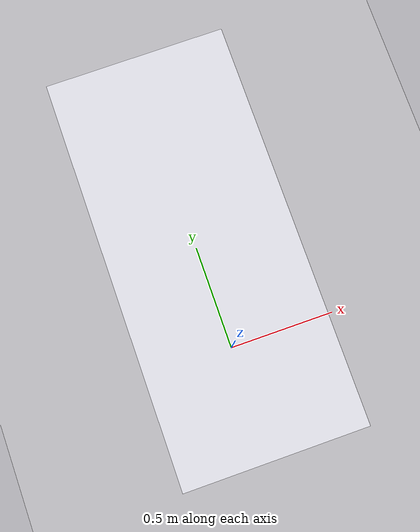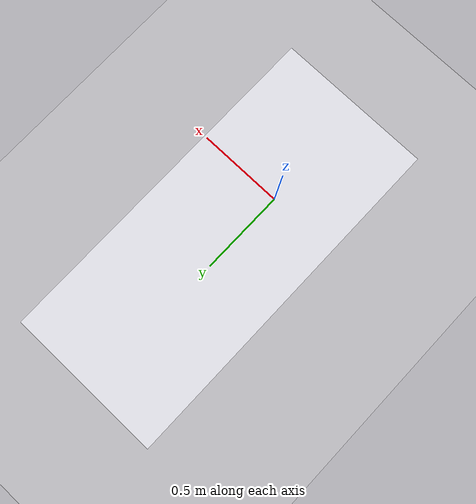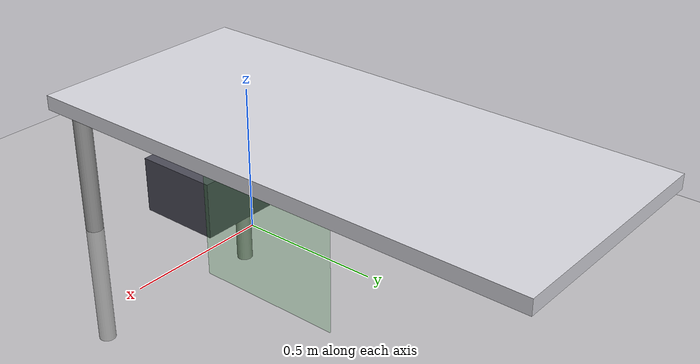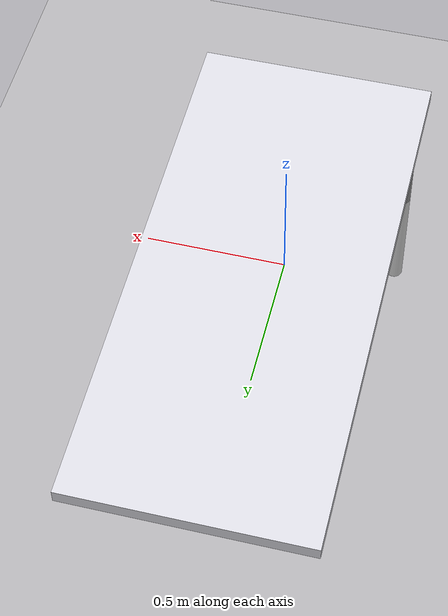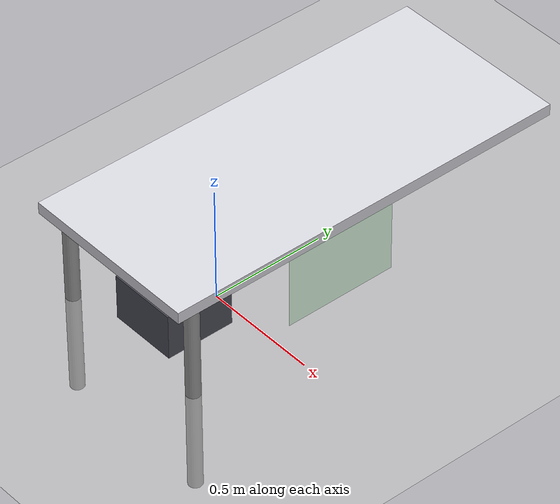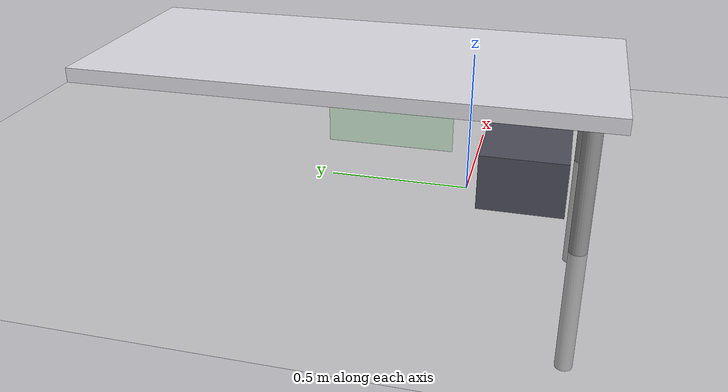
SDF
<?xml version="1.0" ?>
<sdf version="1.6">
  <world name="surgical_or">

    <!-- Lighting -->
    <light name="surgical_light" type="point">
      <pose>0 0 2.5 0 0 0</pose>
      <diffuse>0.9 0.9 0.95 1</diffuse>
      <specular>0.3 0.3 0.3 1</specular>
      <attenuation>
        <range>10</range>
        <linear>0.1</linear>
        <quadratic>0.01</quadratic>
      </attenuation>
      <cast_shadows>true</cast_shadows>
    </light>

    <light name="ambient_light" type="directional">
      <pose>0 0 5 0 0 0</pose>
      <diffuse>0.6 0.6 0.6 1</diffuse>
      <specular>0.1 0.1 0.1 1</specular>
      <direction>0 0 -1</direction>
    </light>

    <!-- Ground plane -->
    <model name="floor">
      <static>true</static>
      <link name="link">
        <collision name="collision">
          <geometry><plane><normal>0 0 1</normal><size>10 10</size></plane></geometry>
        </collision>
        <visual name="visual">
          <geometry><plane><normal>0 0 1</normal><size>10 10</size></plane></geometry>
          <material><ambient>0.85 0.85 0.85 1</ambient></material>
        </visual>
      </link>
    </model>

    <!-- Surgical table -->
    <model name="surgical_table">
      <static>true</static>
      <pose>0 0.4 0.45 0 0 0</pose>
      <link name="table_top">
        <collision name="collision">
          <geometry><box><size>0.8 1.8 0.05</size></box></geometry>
        </collision>
        <visual name="visual">
          <geometry><box><size>0.8 1.8 0.05</size></box></geometry>
          <material>
            <ambient>0.9 0.9 0.92 1</ambient>
            <diffuse>0.85 0.85 0.88 1</diffuse>
          </material>
        </visual>
      </link>
      <link name="table_leg_fl">
        <pose>-0.35 -0.8 -0.45 0 0 0</pose>
        <collision name="collision">
          <geometry><cylinder><radius>0.03</radius><length>0.9</length></cylinder></geometry>
        </collision>
        <visual name="visual">
          <geometry><cylinder><radius>0.03</radius><length>0.9</length></cylinder></geometry>
          <material><ambient>0.6 0.6 0.6 1</ambient></material>
        </visual>
      </link>
      <link name="table_leg_fr">
        <pose>0.35 -0.8 -0.45 0 0 0</pose>
        <collision name="collision">
          <geometry><cylinder><radius>0.03</radius><length>0.9</length></cylinder></geometry>
        </collision>
        <visual name="visual">
          <geometry><cylinder><radius>0.03</radius><length>0.9</length></cylinder></geometry>
          <material><ambient>0.6 0.6 0.6 1</ambient></material>
        </visual>
      </link>
    </model>

    <!-- Robot base platform -->
    <model name="robot_base_platform">
      <static>true</static>
      <pose>0 -0.2 0.1 0 0 0</pose>
      <link name="link">
        <collision name="collision">
          <geometry><box><size>0.3 0.3 0.2</size></box></geometry>
        </collision>
        <visual name="visual">
          <geometry><box><size>0.3 0.3 0.2</size></box></geometry>
          <material><ambient>0.3 0.3 0.35 1</ambient></material>
        </visual>
      </link>
    </model>

    <!-- Workspace boundary markers (transparent boxes for visualisation) -->
    <model name="ws_marker_x_pos">
      <static>true</static>
      <pose>0.30 0.35 0.20 0 0 0</pose>
      <link name="link">
        <visual name="visual">
          <geometry><box><size>0.002 0.50 0.40</size></box></geometry>
          <material>
            <ambient>0.2 0.8 0.2 0.15</ambient>
            <diffuse>0.2 0.8 0.2 0.15</diffuse>
          </material>
          <transparency>0.85</transparency>
        </visual>
      </link>
    </model>

    <!-- Physics settings -->
    <physics type="ode">
      <real_time_update_rate>1000</real_time_update_rate>
      <max_step_size>0.001</max_step_size>
      <real_time_factor>1</real_time_factor>
      <ode>
        <solver>
          <type>quick</type>
          <iters>150</iters>
          <precon_iters>0</precon_iters>
          <sor>1.400000</sor>
          <use_dynamic_moi_rescaling>1</use_dynamic_moi_rescaling>
        </solver>
        <constraints>
          <cfm>0.00001</cfm>
          <erp>0.2</erp>
          <contact_max_correcting_vel>2000.000000</contact_max_correcting_vel>
          <contact_surface_layer>0.01000</contact_surface_layer>
        </constraints>
      </ode>
    </physics>

    <scene>
      <ambient>0.4 0.4 0.4 1</ambient>
      <background>0.7 0.7 0.7 1</background>
      <shadows>1</shadows>
    </scene>

  </world>
</sdf>
